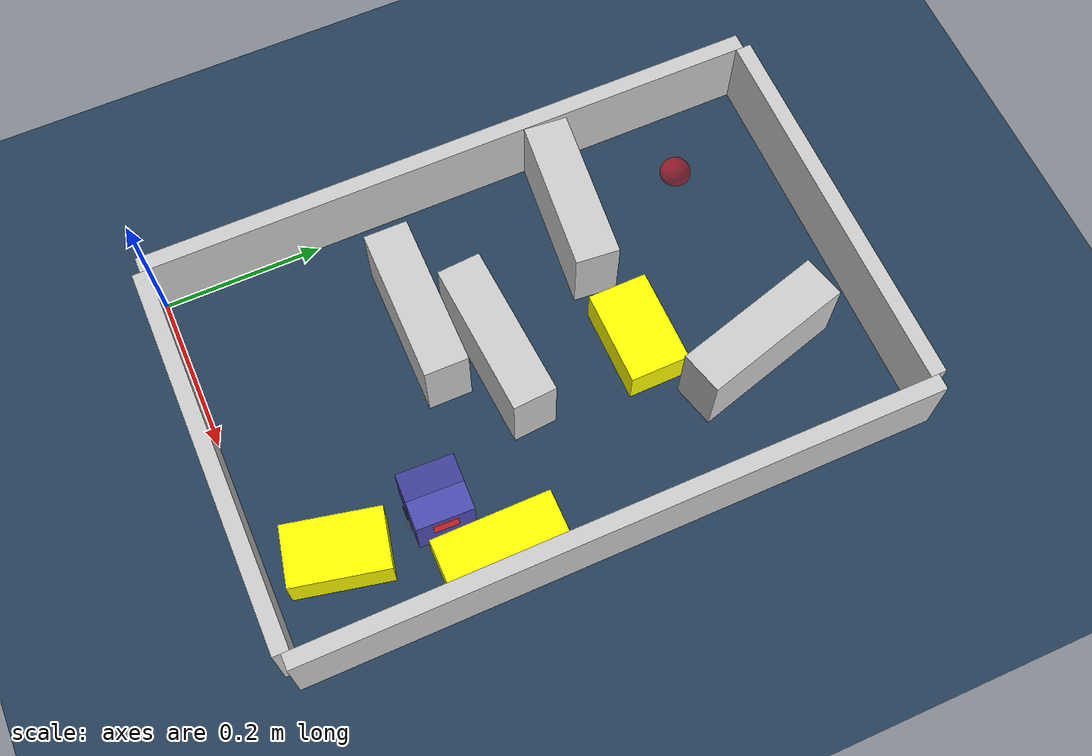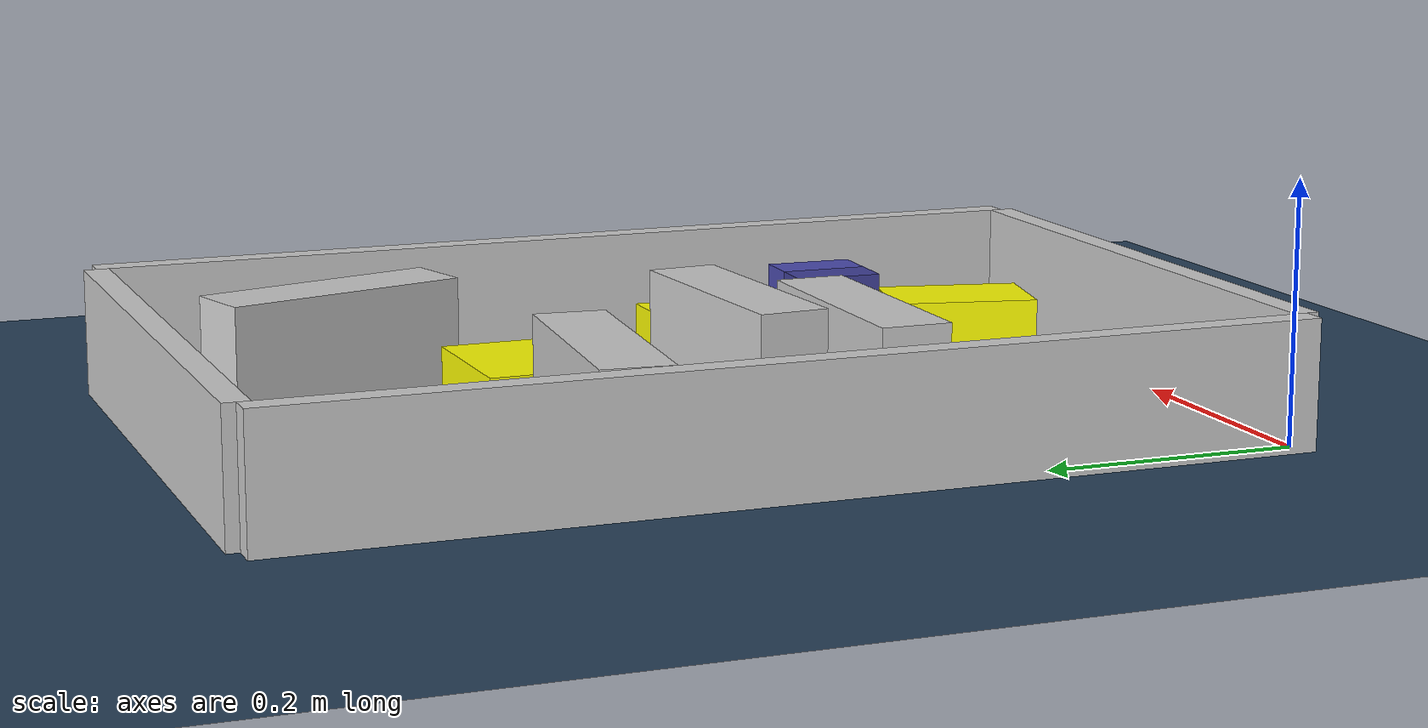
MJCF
<?xml version='1.0' encoding='utf-8'?>
<mujoco model="real_buildable">
  <compiler angle="degree" />
  <option timestep="0.002" integrator="implicitfast" iterations="100" cone="elliptic" />
  <default>
    <geom density="1" />
  </default>
  <asset>
    <texture builtin="gradient" height="3072" rgb1="0.3 0.5 0.7" rgb2="0 0 0" type="skybox" width="512" />
    <texture builtin="checker" height="300" mark="edge" markrgb="0.8 0.8 0.8" name="groundplane" rgb1="0.2 0.3 0.4" rgb2="0.1 0.2 0.3" type="2d" width="300" />
    <material name="groundplane" reflectance="0.2" texrepeat="5 5" texture="groundplane" texuniform="true" />
  </asset>
  <worldbody>
    <light dir="0 0 -1" directional="true" pos="0 0 1.5" />
    <geom name="floor" type="plane" condim="4" friction="0.5 0.005 0.001" material="groundplane" size="0 0 0.05" />
    <body name="walls">
      <geom name="wall_boundary_left" type="box" condim="4" friction="1.0 0.005 0.0001" rgba="0.8 0.8 0.8 1" pos="-0.010000 0.387500 0.050000" euler="0 0 0.000000" size="0.010000 0.397500 0.050000" />
      <geom name="wall_boundary_right" type="box" condim="4" friction="1.0 0.005 0.0001" rgba="0.8 0.8 0.8 1" pos="0.500000 0.387500 0.050000" euler="0 0 0.000000" size="0.010000 0.397500 0.050000" />
      <geom name="wall_boundary_bottom" type="box" condim="4" friction="1.0 0.005 0.0001" rgba="0.8 0.8 0.8 1" pos="0.245000 -0.010000 0.050000" euler="0 0 0.000000" size="0.245000 0.010000 0.050000" />
      <geom name="wall_boundary_top" type="box" condim="4" friction="1.0 0.005 0.0001" rgba="0.8 0.8 0.8 1" pos="0.245000 0.785000 0.050000" euler="0 0 0.000000" size="0.245000 0.010000 0.050000" />
      <geom name="wall_inner_1" type="box" condim="4" friction="1.0 0.005 0.0001" rgba="0.8 0.8 0.8 1" pos="0.159079 0.274736 0.050000" euler="0 0 -0.201922" size="0.097500 0.027500 0.050000" />
      <geom name="wall_inner_2" type="box" condim="4" friction="1.0 0.005 0.0001" rgba="0.8 0.8 0.8 1" pos="0.235735 0.344561 0.050000" euler="0 0 4.135824" size="0.097500 0.027500 0.050000" />
      <geom name="wall_inner_3" type="box" condim="4" friction="1.0 0.005 0.0001" rgba="0.8 0.8 0.8 1" pos="0.100000 0.501000 0.050000" euler="0 0 174.900000" size="0.097500 0.027500 0.050000" />
      <geom name="wall_inner_4" type="box" condim="4" friction="1.0 0.005 0.0001" rgba="0.8 0.8 0.8 1" pos="0.354000 0.631000 0.050000" euler="0 0 105.800000" size="0.097500 0.027500 0.050000" />
    </body>
    <body name="car" pos="0.38271500061555291 0.20709127290358148 0.01" quat="0.99983474687528973 0 0 -0.018179079757381419">
      <freejoint name="car_freejoint" />
      <inertial pos="0 0 0.0375" mass="0.35" diaginertia="0.000266 0.000266 0.000286" />
      <geom name="front_chassis_collision" type="box" pos="0.0175 0 0.0375" size="0.0175 0.035 0.0325" rgba="0.3 0.3 0.7 1" />
      <geom name="rear_chassis_collision" type="box" pos="-0.0175 0 0.0375" size="0.0175 0.035 0.0325" rgba="0.25 0.25 0.6 1" />
      <geom name="front_marker" type="box" pos="0.034 0 0.0505" size="0.002 0.015 0.01" rgba="1 0.2 0.2 1" contype="0" conaffinity="0" />
      <body name="rear_support_body" pos="-0.03 0 0.0025">
        <joint name="rear_caster_joint" type="ball" damping="0.0001" />
        <inertial pos="0 0 0" mass="0.025" diaginertia="0.000001 0.000001 0.000001" />
        <geom name="rear_support" type="sphere" pos="0 0 0" size="0.0025" friction="0 0 0" rgba="0.7 0.1 0.1 1" />
      </body>
      <body name="front_support_body" pos="0.03 0 0.0025">
        <joint name="front_caster_joint" type="ball" damping="0.0001" />
        <inertial pos="0 0 0" mass="0.025" diaginertia="0.000001 0.000001 0.000001" />
        <geom name="front_support" type="sphere" pos="0 0 0" size="0.0025" friction="0 0 0" rgba="0.1 0.7 0.1 1" />
      </body>
      <body name="left_wheel" pos="0 0.0375 0.015">
        <inertial pos="0 0 0" mass="0.05" diaginertia="0.000003 0.000006 0.000003" />
        <joint name="left_wheel_joint" type="hinge" axis="0 1 0" damping="0.01" armature="0.0001" />
        <geom name="left_wheel_collision" type="cylinder" size="0.015 0.0005" euler="90 0 0" rgba="0.1 0.1 0.1 1" />
      </body>
      <body name="right_wheel" pos="0 -0.0375 0.015">
        <inertial pos="0 0 0" mass="0.05" diaginertia="0.000003 0.000006 0.000003" />
        <joint name="right_wheel_joint" type="hinge" axis="0 1 0" damping="0.01" armature="0.0001" />
        <geom name="right_wheel_collision" type="cylinder" size="0.015 0.0005" euler="90 0 0" rgba="0.1 0.1 0.1 1" />
      </body>
    </body>
    <body name="obstacle_0_movable">
      <geom name="obstacle_0_movable" condim="4" pos="0.45501524828289092 0.25724232283589782 0.02" friction="1 0.005 0.0001" rgba="1 1 0 1" size="0.035000 0.075000 0.020000" type="box" mass="0.1" quat="0.99999999426040442 0 0 0.00010714098667706445" />
      <joint type="free" />
    </body>
    <body name="obstacle_1_movable">
      <geom name="obstacle_1_movable" condim="4" pos="0.27900000000000003 0.50999999999999834 0.025000000000000001" friction="1 0.005 0.0001" rgba="1 1 0 1" size="0.037500 0.060000 0.025000" type="box" mass="0.1" quat="0.71079947387299236 0 0 -0.70339470281050398" />
      <joint type="free" />
    </body>
    <body name="obstacle_2_movable">
      <geom name="obstacle_2_movable" condim="4" pos="0.38760300000000059 0.083026999999999934 0.025000000000000001" friction="1 0.005 0.0001" rgba="1 1 0 1" size="0.037500 0.060000 0.025000" type="box" mass="0.1" quat="0.10760567437551606 0 0 0.99419365258594883" />
      <joint type="free" />
    </body>
    <site name="goal" type="sphere" pos="0.080000 0.660000 0.0" size="0.02" rgba="1 0 0 0.5" />
  </worldbody>
  <actuator>
    <velocity name="left_wheel_drive" joint="left_wheel_joint" ctrlrange="-25 25" kv="0.75" forcerange="-0.5 0.5" />
    <velocity name="right_wheel_drive" joint="right_wheel_joint" ctrlrange="-25 25" kv="0.75" forcerange="-0.5 0.5" />
  </actuator>
</mujoco>
